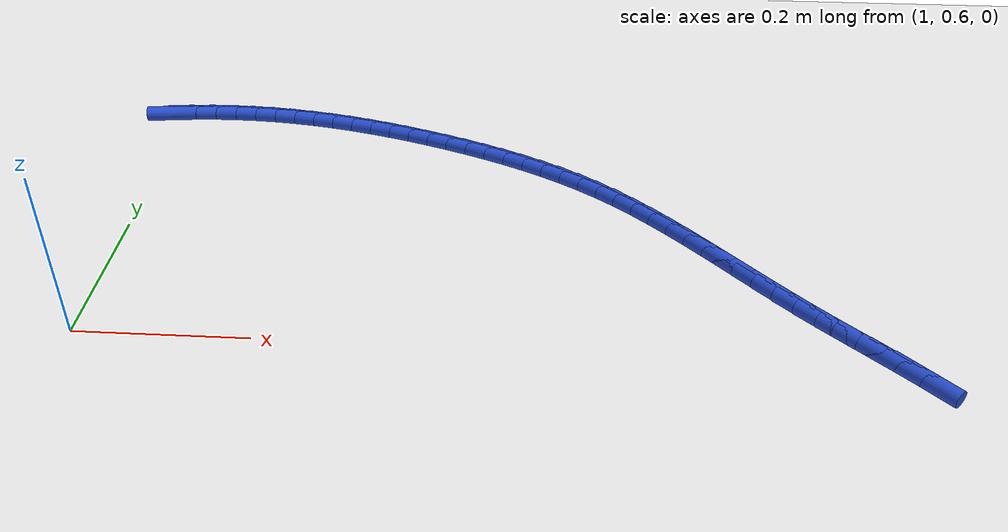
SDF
<sdf version="1.6">
 <world name="default">
  <model name="ground_plane">
   <static>1</static>
   <link name="link">
    <collision name="collision">
     <geometry><plane><normal>0 0 1</normal><size>100 100</size></plane></geometry>
     <surface><friction><ode><mu>100</mu><mu2>50</mu2></ode></friction></surface>
    </collision>
    <visual name="visual">
     <cast_shadows>0</cast_shadows>
     <geometry><plane><normal>0 0 1</normal><size>100 100</size></plane></geometry>
     <material>
      <script><uri>file://media/materials/scripts/gazebo.material</uri><name>Gazebo/WhiteGlow</name></script>
     </material>
    </visual>
   </link>
  </model>
  <model name="line">
   <link name="link_55">
    <pose>0.9861362389798977 1.0567851483085005 0.01 0 1.57 0.10290267627874924</pose>
    <collision name="collision">
     <geometry><cylinder><radius>0.01</radius><length>0.08</length></cylinder></geometry>
    </collision>
    <visual name="visual">
     <material>
      <script><name>Gazebo/Blue</name><uri>file://media/materials/scripts/gazebo.material</uri></script>
     </material>
     <geometry><cylinder><radius>0.01</radius><length>0.08</length></cylinder></geometry>
    </visual>
   </link>
   <link name="link_56">
    <pose>1.0148879523410097 1.0597542639161242 0.01 0 1.57 0.0578150067700696</pose>
    <collision name="collision">
     <geometry><cylinder><radius>0.01</radius><length>0.08</length></cylinder></geometry>
    </collision>
    <visual name="visual">
     <material>
      <script><name>Gazebo/Blue</name><uri>file://media/materials/scripts/gazebo.material</uri></script>
     </material>
     <geometry><cylinder><radius>0.01</radius><length>0.08</length></cylinder></geometry>
    </visual>
   </link>
   <link name="link_57">
    <pose>1.043821472524209 1.0614289218872823 0.01 0 1.57 0.014585524804405633</pose>
    <collision name="collision">
     <geometry><cylinder><radius>0.01</radius><length>0.08</length></cylinder></geometry>
    </collision>
    <visual name="visual">
     <material>
      <script><name>Gazebo/Blue</name><uri>file://media/materials/scripts/gazebo.material</uri></script>
     </material>
     <geometry><cylinder><radius>0.01</radius><length>0.08</length></cylinder></geometry>
    </visual>
   </link>
   <link name="link_58">
    <pose>1.0728224004585563 1.0618519456391216 0.01 0 1.57 -0.027132552841534034</pose>
    <collision name="collision">
     <geometry><cylinder><radius>0.01</radius><length>0.08</length></cylinder></geometry>
    </collision>
    <visual name="visual">
     <material>
      <script><name>Gazebo/Blue</name><uri>file://media/materials/scripts/gazebo.material</uri></script>
     </material>
     <geometry><cylinder><radius>0.01</radius><length>0.08</length></cylinder></geometry>
    </visual>
   </link>
   <link name="link_59">
    <pose>1.101776337073114 1.0610661585887875 0.01 0 1.57 -0.06766742960515118</pose>
    <collision name="collision">
     <geometry><cylinder><radius>0.01</radius><length>0.08</length></cylinder></geometry>
    </collision>
    <visual name="visual">
     <material>
      <script><name>Gazebo/Blue</name><uri>file://media/materials/scripts/gazebo.material</uri></script>
     </material>
     <geometry><cylinder><radius>0.01</radius><length>0.08</length></cylinder></geometry>
    </visual>
   </link>
   <link name="link_60">
    <pose>1.1305710996707277 1.0591147116269546 0.01 0 1.57 -0.10684642102839555</pose>
    <collision name="collision">
     <geometry><cylinder><radius>0.01</radius><length>0.08</length></cylinder></geometry>
    </collision>
    <visual name="visual">
     <material>
      <script><name>Gazebo/Blue</name><uri>file://media/materials/scripts/gazebo.material</uri></script>
     </material>
     <geometry><cylinder><radius>0.01</radius><length>0.08</length></cylinder></geometry>
    </visual>
   </link>
   <link name="link_61">
    <pose>1.159152078755189 1.0560492621964712 0.01 0 1.57 -0.14415059331320842</pose>
    <collision name="collision">
     <geometry><cylinder><radius>0.01</radius><length>0.08</length></cylinder></geometry>
    </collision>
    <visual name="visual">
     <material>
      <script><name>Gazebo/Blue</name><uri>file://media/materials/scripts/gazebo.material</uri></script>
     </material>
     <geometry><cylinder><radius>0.01</radius><length>0.08</length></cylinder></geometry>
    </visual>
   </link>
   <link name="link_62">
    <pose>1.1875261603216454 1.0519305538183812 0.01 0 1.57 -0.17943009595995915</pose>
    <collision name="collision">
     <geometry><cylinder><radius>0.01</radius><length>0.08</length></cylinder></geometry>
    </collision>
    <visual name="visual">
     <material>
      <script><name>Gazebo/Blue</name><uri>file://media/materials/scripts/gazebo.material</uri></script>
     </material>
     <geometry><cylinder><radius>0.01</radius><length>0.08</length></cylinder></geometry>
    </visual>
   </link>
   <link name="link_63">
    <pose>1.2157032322654355 1.0468197735503064 0.01 0 1.57 -0.21258963515773768</pose>
    <collision name="collision">
     <geometry><cylinder><radius>0.01</radius><length>0.08</length></cylinder></geometry>
    </collision>
    <visual name="visual">
     <material>
      <script><name>Gazebo/Blue</name><uri>file://media/materials/scripts/gazebo.material</uri></script>
     </material>
     <geometry><cylinder><radius>0.01</radius><length>0.08</length></cylinder></geometry>
    </visual>
   </link>
   <link name="link_64">
    <pose>1.2436931824818966 1.040778108449869 0.01 0 1.57 -0.24356311118365087</pose>
    <collision name="collision">
     <geometry><cylinder><radius>0.01</radius><length>0.08</length></cylinder></geometry>
    </collision>
    <visual name="visual">
     <material>
      <script><name>Gazebo/Blue</name><uri>file://media/materials/scripts/gazebo.material</uri></script>
     </material>
     <geometry><cylinder><radius>0.01</radius><length>0.08</length></cylinder></geometry>
    </visual>
   </link>
   <link name="link_65">
    <pose>1.2715058988663672 1.0338667455746928 0.01 0 1.57 -0.2723098680784848</pose>
    <collision name="collision">
     <geometry><cylinder><radius>0.01</radius><length>0.08</length></cylinder></geometry>
    </collision>
    <visual name="visual">
     <material>
      <script><name>Gazebo/Blue</name><uri>file://media/materials/scripts/gazebo.material</uri></script>
     </material>
     <geometry><cylinder><radius>0.01</radius><length>0.08</length></cylinder></geometry>
    </visual>
   </link>
   <link name="link_66">
    <pose>1.2991512693141847 1.0261468719823983 0.01 0 1.57 -0.29881056505418174</pose>
    <collision name="collision">
     <geometry><cylinder><radius>0.01</radius><length>0.08</length></cylinder></geometry>
    </collision>
    <visual name="visual">
     <material>
      <script><name>Gazebo/Blue</name><uri>file://media/materials/scripts/gazebo.material</uri></script>
     </material>
     <geometry><cylinder><radius>0.01</radius><length>0.08</length></cylinder></geometry>
    </visual>
   </link>
   <link name="link_67">
    <pose>1.3266391817206868 1.0176796747306092 0.01 0 1.57 -0.323062976342067</pose>
    <collision name="collision">
     <geometry><cylinder><radius>0.01</radius><length>0.08</length></cylinder></geometry>
    </collision>
    <visual name="visual">
     <material>
      <script><name>Gazebo/Blue</name><uri>file://media/materials/scripts/gazebo.material</uri></script>
     </material>
     <geometry><cylinder><radius>0.01</radius><length>0.08</length></cylinder></geometry>
    </visual>
   </link>
   <link name="link_68">
    <pose>1.353979523981212 1.0085263408769474 0.01 0 1.57 -0.3454287903798433</pose>
    <collision name="collision">
     <geometry><cylinder><radius>0.01</radius><length>0.08</length></cylinder></geometry>
    </collision>
    <visual name="visual">
     <material>
      <script><name>Gazebo/Blue</name><uri>file://media/materials/scripts/gazebo.material</uri></script>
     </material>
     <geometry><cylinder><radius>0.01</radius><length>0.08</length></cylinder></geometry>
    </visual>
   </link>
   <link name="link_69">
    <pose>1.3811750822521391 0.99873983472967 0.01 0 1.57 -0.3689026181443</pose>
    <collision name="collision">
     <geometry><cylinder><radius>0.01</radius><length>0.08</length></cylinder></geometry>
    </collision>
    <visual name="visual">
     <material>
      <script><name>Gazebo/Blue</name><uri>file://media/materials/scripts/gazebo.material</uri></script>
     </material>
     <geometry><cylinder><radius>0.01</radius><length>0.08</length></cylinder></geometry>
    </visual>
   </link>
   <link name="link_70">
    <pose>1.408168928557708 0.9883039805814691 0.01 0 1.57 -0.3950704069448111</pose>
    <collision name="collision">
     <geometry><cylinder><radius>0.01</radius><length>0.08</length></cylinder></geometry>
    </collision>
    <visual name="visual">
     <material>
      <script><name>Gazebo/Blue</name><uri>file://media/materials/scripts/gazebo.material</uri></script>
     </material>
     <geometry><cylinder><radius>0.01</radius><length>0.08</length></cylinder></geometry>
    </visual>
   </link>
   <link name="link_71">
    <pose>1.4348742554001352 0.9771680067166257 0.01 0 1.57 -0.4240762697669209</pose>
    <collision name="collision">
     <geometry><cylinder><radius>0.01</radius><length>0.08</length></cylinder></geometry>
    </collision>
    <visual name="visual">
     <material>
      <script><name>Gazebo/Blue</name><uri>file://media/materials/scripts/gazebo.material</uri></script>
     </material>
     <geometry><cylinder><radius>0.01</radius><length>0.08</length></cylinder></geometry>
    </visual>
   </link>
   <link name="link_72">
    <pose>1.4612040330769993 0.9652808841397503 0.01 0 1.57 -0.4560636160199288</pose>
    <collision name="collision">
     <geometry><cylinder><radius>0.01</radius><length>0.08</length></cylinder></geometry>
    </collision>
    <visual name="visual">
     <material>
      <script><name>Gazebo/Blue</name><uri>file://media/materials/scripts/gazebo.material</uri></script>
     </material>
     <geometry><cylinder><radius>0.01</radius><length>0.08</length></cylinder></geometry>
    </visual>
   </link>
   <link name="link_73">
    <pose>1.4870712318858776 0.9525915838554548 0.01 0 1.57 -0.49118018595574087</pose>
    <collision name="collision">
     <geometry><cylinder><radius>0.01</radius><length>0.08</length></cylinder></geometry>
    </collision>
    <visual name="visual">
     <material>
      <script><name>Gazebo/Blue</name><uri>file://media/materials/scripts/gazebo.material</uri></script>
     </material>
     <geometry><cylinder><radius>0.01</radius><length>0.08</length></cylinder></geometry>
    </visual>
   </link>
   <link name="link_74">
    <pose>1.5123888221243484 0.9390490768683495 0.01 0 1.57 -0.5295701697491372</pose>
    <collision name="collision">
     <geometry><cylinder><radius>0.01</radius><length>0.08</length></cylinder></geometry>
    </collision>
    <visual name="visual">
     <material>
      <script><name>Gazebo/Blue</name><uri>file://media/materials/scripts/gazebo.material</uri></script>
     </material>
     <geometry><cylinder><radius>0.01</radius><length>0.08</length></cylinder></geometry>
    </visual>
   </link>
   <link name="link_75">
    <pose>1.537069774089989 0.9246023341830459 0.01 0 1.57 -0.5713639500033487</pose>
    <collision name="collision">
     <geometry><cylinder><radius>0.01</radius><length>0.08</length></cylinder></geometry>
    </collision>
    <visual name="visual">
     <material>
      <script><name>Gazebo/Blue</name><uri>file://media/materials/scripts/gazebo.material</uri></script>
     </material>
     <geometry><cylinder><radius>0.01</radius><length>0.08</length></cylinder></geometry>
    </visual>
   </link>
   <link name="link_76">
    <pose>1.5610270580803776 0.9092003268041552 0.01 0 1.57 -0.6166651408946562</pose>
    <collision name="collision">
     <geometry><cylinder><radius>0.01</radius><length>0.08</length></cylinder></geometry>
    </collision>
    <visual name="visual">
     <material>
      <script><name>Gazebo/Blue</name><uri>file://media/materials/scripts/gazebo.material</uri></script>
     </material>
     <geometry><cylinder><radius>0.01</radius><length>0.08</length></cylinder></geometry>
    </visual>
   </link>
   <link name="link_77">
    <pose>1.584173644594408 0.892792025906398 0.01 0 1.57 -0.6638667803113913</pose>
    <collision name="collision">
     <geometry><cylinder><radius>0.01</radius><length>0.08</length></cylinder></geometry>
    </collision>
    <visual name="visual">
     <material>
      <script><name>Gazebo/Blue</name><uri>file://media/materials/scripts/gazebo.material</uri></script>
     </material>
     <geometry><cylinder><radius>0.01</radius><length>0.08</length></cylinder></geometry>
    </visual>
   </link>
   <link name="link_78">
    <pose>1.6064593175523676 0.8753575096886861 0.01 0 1.57 -0.7065350555855462</pose>
    <collision name="collision">
     <geometry><cylinder><radius>0.01</radius><length>0.08</length></cylinder></geometry>
    </collision>
    <visual name="visual">
     <material>
      <script><name>Gazebo/Blue</name><uri>file://media/materials/scripts/gazebo.material</uri></script>
     </material>
     <geometry><cylinder><radius>0.01</radius><length>0.08</length></cylinder></geometry>
    </visual>
   </link>
   <link name="link_79">
    <pose>1.6279734042852283 0.8569947693307737 0.01 0 1.57 -0.7429592636408965</pose>
    <collision name="collision">
     <geometry><cylinder><radius>0.01</radius><length>0.08</length></cylinder></geometry>
    </collision>
    <visual name="visual">
     <material>
      <script><name>Gazebo/Blue</name><uri>file://media/materials/scripts/gazebo.material</uri></script>
     </material>
     <geometry><cylinder><radius>0.01</radius><length>0.08</length></cylinder></geometry>
    </visual>
   </link>
   <link name="link_80">
    <pose>1.64883829032963 0.8378297299116434 0.01 0 1.57 -0.7730378206280935</pose>
    <collision name="collision">
     <geometry><cylinder><radius>0.01</radius><length>0.08</length></cylinder></geometry>
    </collision>
    <visual name="visual">
     <material>
      <script><name>Gazebo/Blue</name><uri>file://media/materials/scripts/gazebo.material</uri></script>
     </material>
     <geometry><cylinder><radius>0.01</radius><length>0.08</length></cylinder></geometry>
    </visual>
   </link>
   <link name="link_81">
    <pose>1.6691763612222144 0.8179883165102773 0.01 0 1.57 -0.7967607321528472</pose>
    <collision name="collision">
     <geometry><cylinder><radius>0.01</radius><length>0.08</length></cylinder></geometry>
    </collision>
    <visual name="visual">
     <material>
      <script><name>Gazebo/Blue</name><uri>file://media/materials/scripts/gazebo.material</uri></script>
     </material>
     <geometry><cylinder><radius>0.01</radius><length>0.08</length></cylinder></geometry>
    </visual>
   </link>
   <link name="link_82">
    <pose>1.6891100024996213 0.7975964542056584 0.01 0 1.57 -0.8141731932817932</pose>
    <collision name="collision">
     <geometry><cylinder><radius>0.01</radius><length>0.08</length></cylinder></geometry>
    </collision>
    <visual name="visual">
     <material>
      <script><name>Gazebo/Blue</name><uri>file://media/materials/scripts/gazebo.material</uri></script>
     </material>
     <geometry><cylinder><radius>0.01</radius><length>0.08</length></cylinder></geometry>
    </visual>
   </link>
   <link name="link_83">
    <pose>1.7087615996984935 0.7767800680767682 0.01 0 1.57 -0.8253465906681683</pose>
    <collision name="collision">
     <geometry><cylinder><radius>0.01</radius><length>0.08</length></cylinder></geometry>
    </collision>
    <visual name="visual">
     <material>
      <script><name>Gazebo/Blue</name><uri>file://media/materials/scripts/gazebo.material</uri></script>
     </material>
     <geometry><cylinder><radius>0.01</radius><length>0.08</length></cylinder></geometry>
    </visual>
   </link>
   <link name="link_84">
    <pose>1.7282535383554707 0.7556650832025902 0.01 0 1.57 -0.8303577406982188</pose>
    <collision name="collision">
     <geometry><cylinder><radius>0.01</radius><length>0.08</length></cylinder></geometry>
    </collision>
    <visual name="visual">
     <material>
      <script><name>Gazebo/Blue</name><uri>file://media/materials/scripts/gazebo.material</uri></script>
     </material>
     <geometry><cylinder><radius>0.01</radius><length>0.08</length></cylinder></geometry>
    </visual>
   </link>
   <link name="link_85">
    <pose>1.7477082040071952 0.7343774246621062 0.01 0 1.57 -0.8292761529731304</pose>
    <collision name="collision">
     <geometry><cylinder><radius>0.01</radius><length>0.08</length></cylinder></geometry>
    </collision>
    <visual name="visual">
     <material>
      <script><name>Gazebo/Blue</name><uri>file://media/materials/scripts/gazebo.material</uri></script>
     </material>
     <geometry><cylinder><radius>0.01</radius><length>0.08</length></cylinder></geometry>
    </visual>
   </link>
   <link name="link_86">
    <pose>1.7672479821903062 0.713043017534299 0.01 0 1.57 -0.8221587223452365</pose>
    <collision name="collision">
     <geometry><cylinder><radius>0.01</radius><length>0.08</length></cylinder></geometry>
    </collision>
    <visual name="visual">
     <material>
      <script><name>Gazebo/Blue</name><uri>file://media/materials/scripts/gazebo.material</uri></script>
     </material>
     <geometry><cylinder><radius>0.01</radius><length>0.08</length></cylinder></geometry>
    </visual>
   </link>
   <link name="link_87">
    <pose>1.7869952584414461 0.6917877868981508 0.01 0 1.57 -0.8090512603980048</pose>
    <collision name="collision">
     <geometry><cylinder><radius>0.01</radius><length>0.08</length></cylinder></geometry>
    </collision>
    <visual name="visual">
     <material>
      <script><name>Gazebo/Blue</name><uri>file://media/materials/scripts/gazebo.material</uri></script>
     </material>
     <geometry><cylinder><radius>0.01</radius><length>0.08</length></cylinder></geometry>
    </visual>
   </link>
   <link name="link_88">
    <pose>1.8070724182972562 0.670737657832644 0.01 0 1.57 -0.7901969047849586</pose>
    <collision name="collision">
     <geometry><cylinder><radius>0.01</radius><length>0.08</length></cylinder></geometry>
    </collision>
    <visual name="visual">
     <material>
      <script><name>Gazebo/Blue</name><uri>file://media/materials/scripts/gazebo.material</uri></script>
     </material>
     <geometry><cylinder><radius>0.01</radius><length>0.08</length></cylinder></geometry>
    </visual>
   </link>
   <link name="link_89">
    <pose>1.827597165876979 0.6500149729723794 0.01 0 1.57 -0.7725561242631066</pose>
    <collision name="collision">
     <geometry><cylinder><radius>0.01</radius><length>0.08</length></cylinder></geometry>
    </collision>
    <visual name="visual">
     <material>
      <script><name>Gazebo/Blue</name><uri>file://media/materials/scripts/gazebo.material</uri></script>
     </material>
     <geometry><cylinder><radius>0.01</radius><length>0.08</length></cylinder></geometry>
    </visual>
   </link>
   <link name="link_90">
    <pose>1.8485249522106777 0.6296179111318113 0.01 0 1.57 -0.7645857672469221</pose>
    <collision name="collision">
     <geometry><cylinder><radius>0.01</radius><length>0.08</length></cylinder></geometry>
    </collision>
    <visual name="visual">
     <material>
      <script><name>Gazebo/Blue</name><uri>file://media/materials/scripts/gazebo.material</uri></script>
     </material>
     <geometry><cylinder><radius>0.01</radius><length>0.08</length></cylinder></geometry>
    </visual>
   </link>
   <link name="link_91">
    <pose>1.8696112121468993 0.6093915891817782 0.01 0 1.57 -0.766764891529967</pose>
    <collision name="collision">
     <geometry><cylinder><radius>0.01</radius><length>0.08</length></cylinder></geometry>
    </collision>
    <visual name="visual">
     <material>
      <script><name>Gazebo/Blue</name><uri>file://media/materials/scripts/gazebo.material</uri></script>
     </material>
     <geometry><cylinder><radius>0.01</radius><length>0.08</length></cylinder></geometry>
    </visual>
   </link>
   <link name="link_92">
    <pose>1.8905990426905155 0.5891716824853415 0.01 0 1.57 -0.7791880475556096</pose>
    <collision name="collision">
     <geometry><cylinder><radius>0.01</radius><length>0.08</length></cylinder></geometry>
    </collision>
    <visual name="visual">
     <material>
      <script><name>Gazebo/Blue</name><uri>file://media/materials/scripts/gazebo.material</uri></script>
     </material>
     <geometry><cylinder><radius>0.01</radius><length>0.08</length></cylinder></geometry>
    </visual>
   </link>
   <link name="link_93">
    <pose>1.9112315408463987 0.5687938664055642 0.01 0 1.57 -0.8020906723515054</pose>
    <collision name="collision">
     <geometry><cylinder><radius>0.01</radius><length>0.08</length></cylinder></geometry>
    </collision>
    <visual name="visual">
     <material>
      <script><name>Gazebo/Blue</name><uri>file://media/materials/scripts/gazebo.material</uri></script>
     </material>
     <geometry><cylinder><radius>0.01</radius><length>0.08</length></cylinder></geometry>
    </visual>
   </link>
  </model>
 </world>
</sdf>
